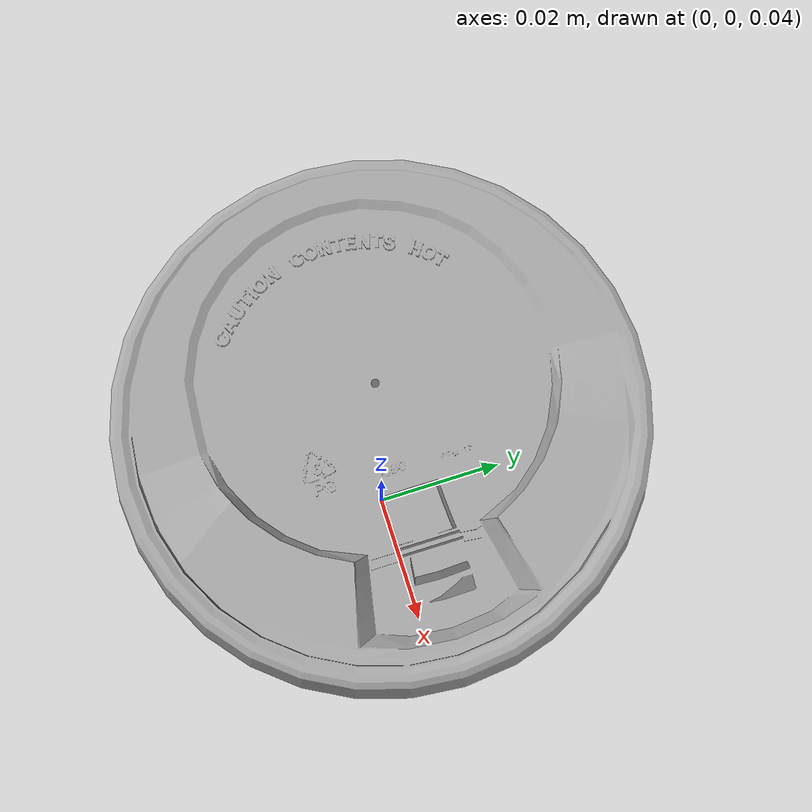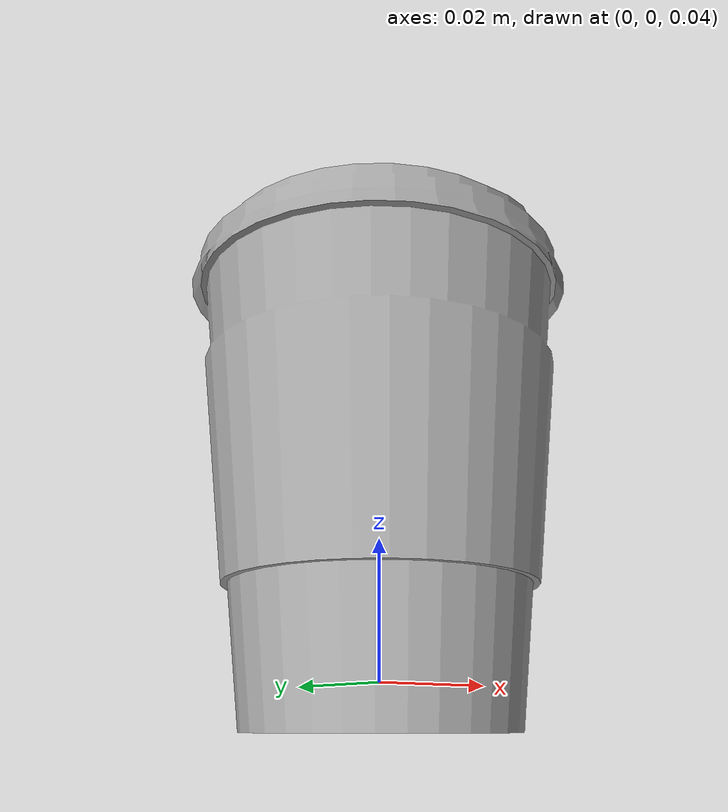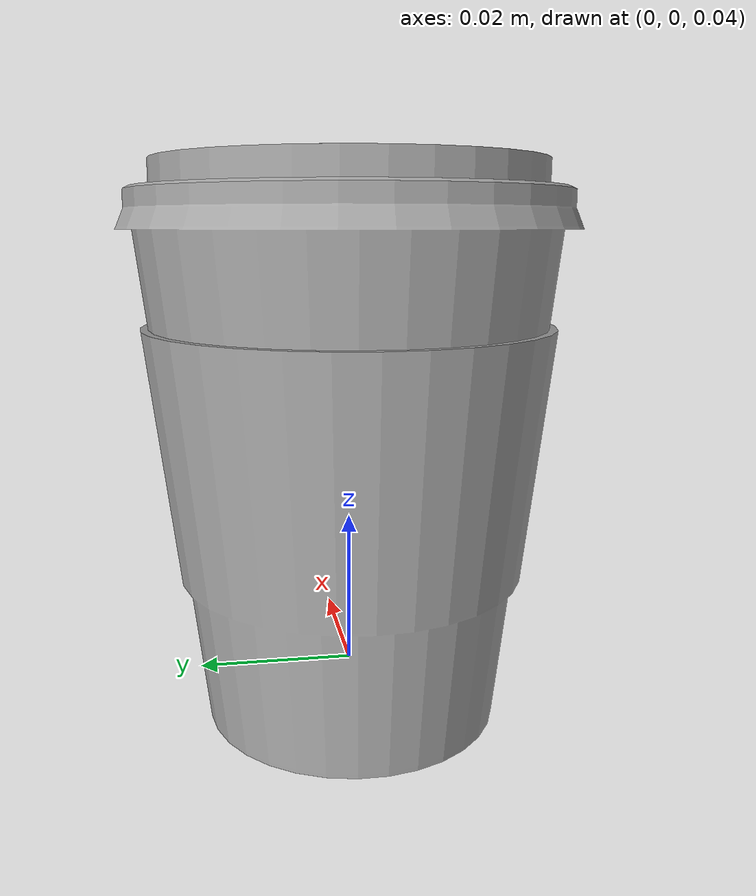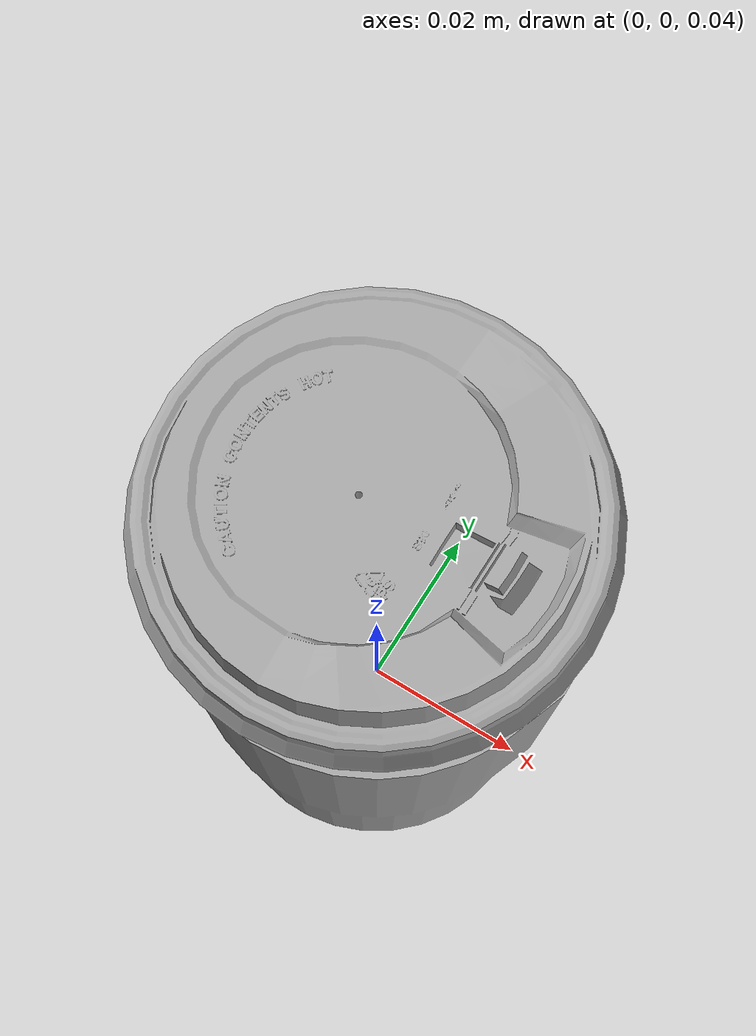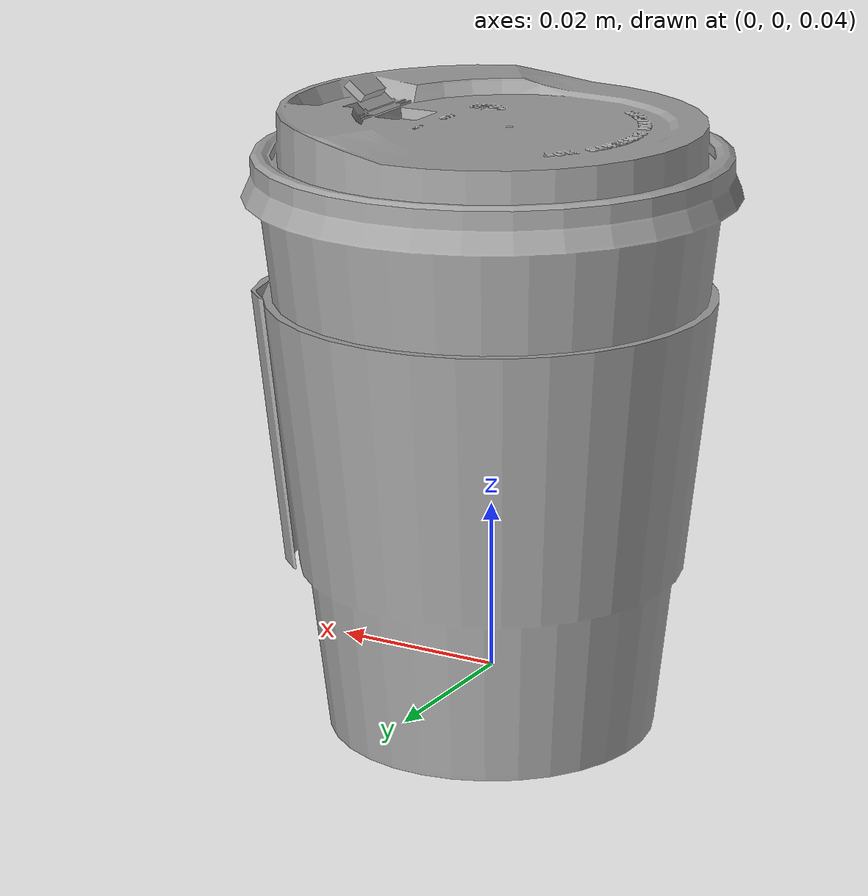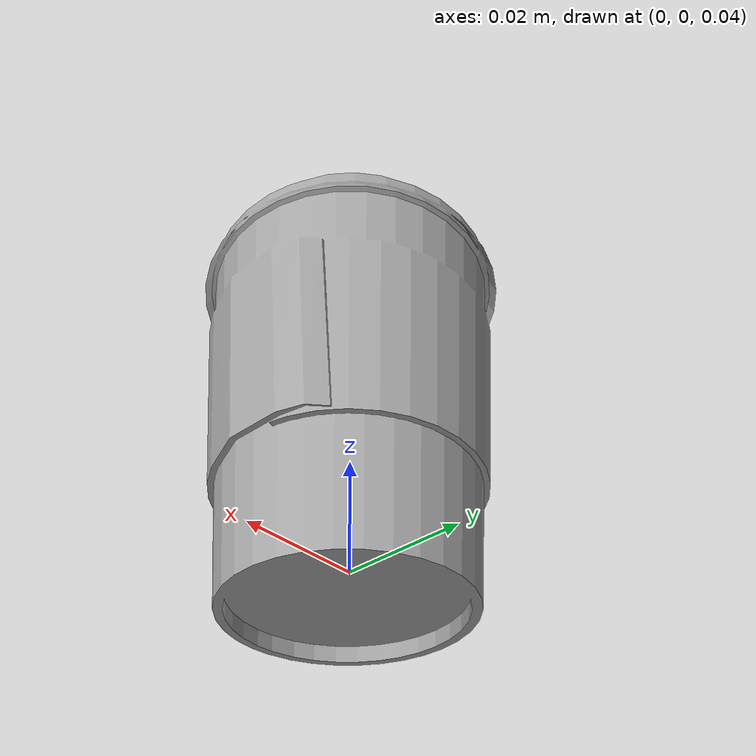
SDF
<?xml version="1.0"?>

<sdf version="1.4">
    <model name="cup">
        <static>true</static>
        <link name="cup_link">

            <visual name="cup_mesh">
                <geometry>
                    <mesh>
                        <uri>model://cup/meshes/model.dae</uri>
                    </mesh>
                </geometry>
            </visual>

            <collision name="cup_collison">
                <pose>0 0 0.070480 0 0 0</pose>
                <geometry>
                    <box>
                        <size>0.062209 0.057846 0.069314</size>
                    </box>
                </geometry>
            </collision>

        </link>
    </model>
</sdf>
